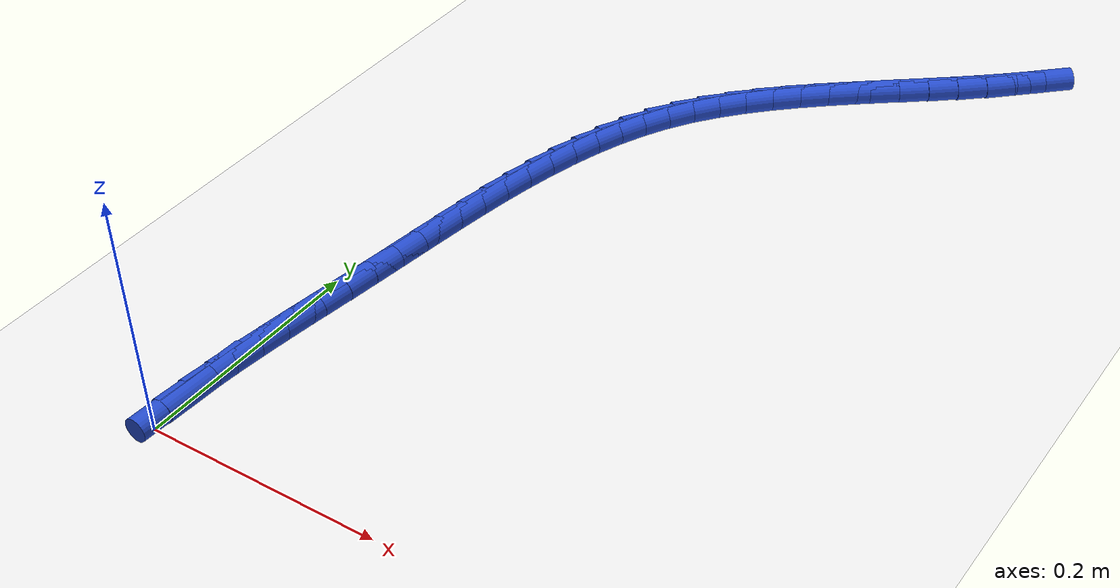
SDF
<sdf version="1.6">
 <world name="default">
  <model name="ground_plane">
   <static>1</static>
   <link name="link">
    <collision name="collision">
     <geometry><plane><normal>0 0 1</normal><size>100 100</size></plane></geometry>
     <surface><friction><ode><mu>100</mu><mu2>50</mu2></ode></friction></surface>
    </collision>
    <visual name="visual">
     <cast_shadows>0</cast_shadows>
     <geometry><plane><normal>0 0 1</normal><size>100 100</size></plane></geometry>
     <material>
      <script><uri>file://media/materials/scripts/gazebo.material</uri><name>Gazebo/WhiteGlow</name></script>
     </material>
    </visual>
   </link>
  </model>
  <model name="line">
   <link name="link_1">
    <pose>0.0007222507805106315 0.024783169948845978 0.01 0 1.57 1.5083730205306412</pose>
    <collision name="collision">
     <geometry><cylinder><radius>0.01</radius><length>0.08</length></cylinder></geometry>
    </collision>
    <visual name="visual">
     <material>
      <script><name>Gazebo/Blue</name><uri>file://media/materials/scripts/gazebo.material</uri></script>
     </material>
     <geometry><cylinder><radius>0.01</radius><length>0.08</length></cylinder></geometry>
    </visual>
   </link>
   <link name="link_2">
    <pose>0.0022718591314617705 0.04957511305696374 0.01 0 1.57 1.4804635396925818</pose>
    <collision name="collision">
     <geometry><cylinder><radius>0.01</radius><length>0.08</length></cylinder></geometry>
    </collision>
    <visual name="visual">
     <material>
      <script><name>Gazebo/Blue</name><uri>file://media/materials/scripts/gazebo.material</uri></script>
     </material>
     <geometry><cylinder><radius>0.01</radius><length>0.08</length></cylinder></geometry>
    </visual>
   </link>
   <link name="link_3">
    <pose>0.004520885112510516 0.07440447305542623 0.01 0 1.57 1.4579832823140808</pose>
    <collision name="collision">
     <geometry><cylinder><radius>0.01</radius><length>0.08</length></cylinder></geometry>
    </collision>
    <visual name="visual">
     <material>
      <script><name>Gazebo/Blue</name><uri>file://media/materials/scripts/gazebo.material</uri></script>
     </material>
     <geometry><cylinder><radius>0.01</radius><length>0.08</length></cylinder></geometry>
    </visual>
   </link>
   <link name="link_4">
    <pose>0.007341388783313968 0.09929989367530627 0.01 0 1.57 1.440918312579927</pose>
    <collision name="collision">
     <geometry><cylinder><radius>0.01</radius><length>0.08</length></cylinder></geometry>
    </collision>
    <visual name="visual">
     <material>
      <script><name>Gazebo/Blue</name><uri>file://media/materials/scripts/gazebo.material</uri></script>
     </material>
     <geometry><cylinder><radius>0.01</radius><length>0.08</length></cylinder></geometry>
    </visual>
   </link>
   <link name="link_5">
    <pose>0.01060543020352924 0.12429001864767683 0.01 0 1.57 1.4292114604930566</pose>
    <collision name="collision">
     <geometry><cylinder><radius>0.01</radius><length>0.08</length></cylinder></geometry>
    </collision>
    <visual name="visual">
     <material>
      <script><name>Gazebo/Blue</name><uri>file://media/materials/scripts/gazebo.material</uri></script>
     </material>
     <geometry><cylinder><radius>0.01</radius><length>0.08</length></cylinder></geometry>
    </visual>
   </link>
   <link name="link_6">
    <pose>0.014185069432813422 0.14940349170361078 0.01 0 1.57 1.4227783164318215</pose>
    <collision name="collision">
     <geometry><cylinder><radius>0.01</radius><length>0.08</length></cylinder></geometry>
    </collision>
    <visual name="visual">
     <material>
      <script><name>Gazebo/Blue</name><uri>file://media/materials/scripts/gazebo.material</uri></script>
     </material>
     <geometry><cylinder><radius>0.01</radius><length>0.08</length></cylinder></geometry>
    </visual>
   </link>
   <link name="link_7">
    <pose>0.017952366530823632 0.17466895657418105 0.01 0 1.57 1.4215182199162297</pose>
    <collision name="collision">
     <geometry><cylinder><radius>0.01</radius><length>0.08</length></cylinder></geometry>
    </collision>
    <visual name="visual">
     <material>
      <script><name>Gazebo/Blue</name><uri>file://media/materials/scripts/gazebo.material</uri></script>
     </material>
     <geometry><cylinder><radius>0.01</radius><length>0.08</length></cylinder></geometry>
    </visual>
   </link>
   <link name="link_8">
    <pose>0.021779381557216967 0.20011505699046056 0.01 0 1.57 1.4253166032420594</pose>
    <collision name="collision">
     <geometry><cylinder><radius>0.01</radius><length>0.08</length></cylinder></geometry>
    </collision>
    <visual name="visual">
     <material>
      <script><name>Gazebo/Blue</name><uri>file://media/materials/scripts/gazebo.material</uri></script>
     </material>
     <geometry><cylinder><radius>0.01</radius><length>0.08</length></cylinder></geometry>
    </visual>
   </link>
   <link name="link_9">
    <pose>0.025538268037186118 0.2257703907212635 0.01 0 1.57 1.4313777457403511</pose>
    <collision name="collision">
     <geometry><cylinder><radius>0.01</radius><length>0.08</length></cylinder></geometry>
    </collision>
    <visual name="visual">
     <material>
      <script><name>Gazebo/Blue</name><uri>file://media/materials/scripts/gazebo.material</uri></script>
     </material>
     <geometry><cylinder><radius>0.01</radius><length>0.08</length></cylinder></geometry>
    </visual>
   </link>
   <link name="link_10">
    <pose>0.02916726873446623 0.2516310557411657 0.01 0 1.57 1.4323362552272612</pose>
    <collision name="collision">
     <geometry><cylinder><radius>0.01</radius><length>0.08</length></cylinder></geometry>
    </collision>
    <visual name="visual">
     <material>
      <script><name>Gazebo/Blue</name><uri>file://media/materials/scripts/gazebo.material</uri></script>
     </material>
     <geometry><cylinder><radius>0.01</radius><length>0.08</length></cylinder></geometry>
    </visual>
   </link>
   <link name="link_11">
    <pose>0.03278659663364936 0.27760366503647804 0.01 0 1.57 1.427010615349144</pose>
    <collision name="collision">
     <geometry><cylinder><radius>0.01</radius><length>0.08</length></cylinder></geometry>
    </collision>
    <visual name="visual">
     <material>
      <script><name>Gazebo/Blue</name><uri>file://media/materials/scripts/gazebo.material</uri></script>
     </material>
     <geometry><cylinder><radius>0.01</radius><length>0.08</length></cylinder></geometry>
    </visual>
   </link>
   <link name="link_12">
    <pose>0.03654751356184786 0.30357956313202666 0.01 0 1.57 1.4153657907886936</pose>
    <collision name="collision">
     <geometry><cylinder><radius>0.01</radius><length>0.08</length></cylinder></geometry>
    </collision>
    <visual name="visual">
     <material>
      <script><name>Gazebo/Blue</name><uri>file://media/materials/scripts/gazebo.material</uri></script>
     </material>
     <geometry><cylinder><radius>0.01</radius><length>0.08</length></cylinder></geometry>
    </visual>
   </link>
   <link name="link_13">
    <pose>0.040601281346174065 0.3294500945526377 0.01 0 1.57 1.3972484574126967</pose>
    <collision name="collision">
     <geometry><cylinder><radius>0.01</radius><length>0.08</length></cylinder></geometry>
    </collision>
    <visual name="visual">
     <material>
      <script><name>Gazebo/Blue</name><uri>file://media/materials/scripts/gazebo.material</uri></script>
     </material>
     <geometry><cylinder><radius>0.01</radius><length>0.08</length></cylinder></geometry>
    </visual>
   </link>
   <link name="link_14">
    <pose>0.04509916181374028 0.35510660382313697 0.01 0 1.57 1.3723956001713247</pose>
    <collision name="collision">
     <geometry><cylinder><radius>0.01</radius><length>0.08</length></cylinder></geometry>
    </collision>
    <visual name="visual">
     <material>
      <script><name>Gazebo/Blue</name><uri>file://media/materials/scripts/gazebo.material</uri></script>
     </material>
     <geometry><cylinder><radius>0.01</radius><length>0.08</length></cylinder></geometry>
    </visual>
   </link>
   <link name="link_15">
    <pose>0.050192416791658895 0.3804404354683509 0.01 0 1.57 1.3404485300727265</pose>
    <collision name="collision">
     <geometry><cylinder><radius>0.01</radius><length>0.08</length></cylinder></geometry>
    </collision>
    <visual name="visual">
     <material>
      <script><name>Gazebo/Blue</name><uri>file://media/materials/scripts/gazebo.material</uri></script>
     </material>
     <geometry><cylinder><radius>0.01</radius><length>0.08</length></cylinder></geometry>
    </visual>
   </link>
   <link name="link_16">
    <pose>0.056032308107042204 0.4053429340131051 0.01 0 1.57 1.3009768018593943</pose>
    <collision name="collision">
     <geometry><cylinder><radius>0.01</radius><length>0.08</length></cylinder></geometry>
    </collision>
    <visual name="visual">
     <material>
      <script><name>Gazebo/Blue</name><uri>file://media/materials/scripts/gazebo.material</uri></script>
     </material>
     <geometry><cylinder><radius>0.01</radius><length>0.08</length></cylinder></geometry>
    </visual>
   </link>
   <link name="link_17">
    <pose>0.06277009758700258 0.4297054439822261 0.01 0 1.57 1.2535183638982366</pose>
    <collision name="collision">
     <geometry><cylinder><radius>0.01</radius><length>0.08</length></cylinder></geometry>
    </collision>
    <visual name="visual">
     <material>
      <script><name>Gazebo/Blue</name><uri>file://media/materials/scripts/gazebo.material</uri></script>
     </material>
     <geometry><cylinder><radius>0.01</radius><length>0.08</length></cylinder></geometry>
    </visual>
   </link>
   <link name="link_18">
    <pose>0.07055704705865233 0.4534193099005396 0.01 0 1.57 1.1976436448500605</pose>
    <collision name="collision">
     <geometry><cylinder><radius>0.01</radius><length>0.08</length></cylinder></geometry>
    </collision>
    <visual name="visual">
     <material>
      <script><name>Gazebo/Blue</name><uri>file://media/materials/scripts/gazebo.material</uri></script>
     </material>
     <geometry><cylinder><radius>0.01</radius><length>0.08</length></cylinder></geometry>
    </visual>
   </link>
   <link name="link_19">
    <pose>0.07954441834910381 0.47637587629287187 0.01 0 1.57 1.133050743131445</pose>
    <collision name="collision">
     <geometry><cylinder><radius>0.01</radius><length>0.08</length></cylinder></geometry>
    </collision>
    <visual name="visual">
     <material>
      <script><name>Gazebo/Blue</name><uri>file://media/materials/scripts/gazebo.material</uri></script>
     </material>
     <geometry><cylinder><radius>0.01</radius><length>0.08</length></cylinder></geometry>
    </visual>
   </link>
   <link name="link_20">
    <pose>0.08988347328546936 0.4984664876840489 0.01 0 1.57 1.0596938997533212</pose>
    <collision name="collision">
     <geometry><cylinder><radius>0.01</radius><length>0.08</length></cylinder></geometry>
    </collision>
    <visual name="visual">
     <material>
      <script><name>Gazebo/Blue</name><uri>file://media/materials/scripts/gazebo.material</uri></script>
     </material>
     <geometry><cylinder><radius>0.01</radius><length>0.08</length></cylinder></geometry>
    </visual>
   </link>
   <link name="link_21">
    <pose>0.10172547369486132 0.5195824885988968 0.01 0 1.57 0.9787237997052846</pose>
    <collision name="collision">
     <geometry><cylinder><radius>0.01</radius><length>0.08</length></cylinder></geometry>
    </collision>
    <visual name="visual">
     <material>
      <script><name>Gazebo/Blue</name><uri>file://media/materials/scripts/gazebo.material</uri></script>
     </material>
     <geometry><cylinder><radius>0.01</radius><length>0.08</length></cylinder></geometry>
    </visual>
   </link>
   <link name="link_22">
    <pose>0.11520621504434371 0.5396263684701199 0.01 0 1.57 0.9009672411544195</pose>
    <collision name="collision">
     <geometry><cylinder><radius>0.01</radius><length>0.08</length></cylinder></geometry>
    </collision>
    <visual name="visual">
     <material>
      <script><name>Gazebo/Blue</name><uri>file://media/materials/scripts/gazebo.material</uri></script>
     </material>
     <geometry><cylinder><radius>0.01</radius><length>0.08</length></cylinder></geometry>
    </visual>
   </link>
   <link name="link_23">
    <pose>0.13026582994640412 0.5586416094709648 0.01 0 1.57 0.8340236462627421</pose>
    <collision name="collision">
     <geometry><cylinder><radius>0.01</radius><length>0.08</length></cylinder></geometry>
    </collision>
    <visual name="visual">
     <material>
      <script><name>Gazebo/Blue</name><uri>file://media/materials/scripts/gazebo.material</uri></script>
     </material>
     <geometry><cylinder><radius>0.01</radius><length>0.08</length></cylinder></geometry>
    </visual>
   </link>
   <link name="link_24">
    <pose>0.1467102501913302 0.5767683975754384 0.01 0 1.57 0.7781974574996203</pose>
    <collision name="collision">
     <geometry><cylinder><radius>0.01</radius><length>0.08</length></cylinder></geometry>
    </collision>
    <visual name="visual">
     <material>
      <script><name>Gazebo/Blue</name><uri>file://media/materials/scripts/gazebo.material</uri></script>
     </material>
     <geometry><cylinder><radius>0.01</radius><length>0.08</length></cylinder></geometry>
    </visual>
   </link>
   <link name="link_25">
    <pose>0.16434278410048048 0.5941488092036153 0.01 0 1.57 0.7332466025543669</pose>
    <collision name="collision">
     <geometry><cylinder><radius>0.01</radius><length>0.08</length></cylinder></geometry>
    </collision>
    <visual name="visual">
     <material>
      <script><name>Gazebo/Blue</name><uri>file://media/materials/scripts/gazebo.material</uri></script>
     </material>
     <geometry><cylinder><radius>0.01</radius><length>0.08</length></cylinder></geometry>
    </visual>
   </link>
   <link name="link_26">
    <pose>0.18296673999521357 0.6109249207755699 0.01 0 1.57 0.6987259892979459</pose>
    <collision name="collision">
     <geometry><cylinder><radius>0.01</radius><length>0.08</length></cylinder></geometry>
    </collision>
    <visual name="visual">
     <material>
      <script><name>Gazebo/Blue</name><uri>file://media/materials/scripts/gazebo.material</uri></script>
     </material>
     <geometry><cylinder><radius>0.01</radius><length>0.08</length></cylinder></geometry>
    </visual>
   </link>
   <link name="link_27">
    <pose>0.2023854261968882 0.6272388087113765 0.01 0 1.57 0.6741424017186908</pose>
    <collision name="collision">
     <geometry><cylinder><radius>0.01</radius><length>0.08</length></cylinder></geometry>
    </collision>
    <visual name="visual">
     <material>
      <script><name>Gazebo/Blue</name><uri>file://media/materials/scripts/gazebo.material</uri></script>
     </material>
     <geometry><cylinder><radius>0.01</radius><length>0.08</length></cylinder></geometry>
    </visual>
   </link>
   <link name="link_28">
    <pose>0.22240215102686312 0.6432325494311097 0.01 0 1.57 0.6590549604459279</pose>
    <collision name="collision">
     <geometry><cylinder><radius>0.01</radius><length>0.08</length></cylinder></geometry>
    </collision>
    <visual name="visual">
     <material>
      <script><name>Gazebo/Blue</name><uri>file://media/materials/scripts/gazebo.material</uri></script>
     </material>
     <geometry><cylinder><radius>0.01</radius><length>0.08</length></cylinder></geometry>
    </visual>
   </link>
   <link name="link_29">
    <pose>0.24282022280649682 0.6590482193548438 0.01 0 1.57 0.6531328040601314</pose>
    <collision name="collision">
     <geometry><cylinder><radius>0.01</radius><length>0.08</length></cylinder></geometry>
    </collision>
    <visual name="visual">
     <material>
      <script><name>Gazebo/Blue</name><uri>file://media/materials/scripts/gazebo.material</uri></script>
     </material>
     <geometry><cylinder><radius>0.01</radius><length>0.08</length></cylinder></geometry>
    </visual>
   </link>
   <link name="link_30">
    <pose>0.26344294985714806 0.6748278949026532 0.01 0 1.57 0.6561825459402939</pose>
    <collision name="collision">
     <geometry><cylinder><radius>0.01</radius><length>0.08</length></cylinder></geometry>
    </collision>
    <visual name="visual">
     <material>
      <script><name>Gazebo/Blue</name><uri>file://media/materials/scripts/gazebo.material</uri></script>
     </material>
     <geometry><cylinder><radius>0.01</radius><length>0.08</length></cylinder></geometry>
    </visual>
   </link>
   <link name="link_31">
    <pose>0.2840736405001753 0.6907136524946123 0.01 0 1.57 0.6681545322979969</pose>
    <collision name="collision">
     <geometry><cylinder><radius>0.01</radius><length>0.08</length></cylinder></geometry>
    </collision>
    <visual name="visual">
     <material>
      <script><name>Gazebo/Blue</name><uri>file://media/materials/scripts/gazebo.material</uri></script>
     </material>
     <geometry><cylinder><radius>0.01</radius><length>0.08</length></cylinder></geometry>
    </visual>
   </link>
   <link name="link_32">
    <pose>0.30451560305693753 0.7068475685507958 0.01 0 1.57 0.6891322635207688</pose>
    <collision name="collision">
     <geometry><cylinder><radius>0.01</radius><length>0.08</length></cylinder></geometry>
    </collision>
    <visual name="visual">
     <material>
      <script><name>Gazebo/Blue</name><uri>file://media/materials/scripts/gazebo.material</uri></script>
     </material>
     <geometry><cylinder><radius>0.01</radius><length>0.08</length></cylinder></geometry>
    </visual>
   </link>
   <link name="link_33">
    <pose>0.3245721458487931 0.7233717194912779 0.01 0 1.57 0.7177177502858603</pose>
    <collision name="collision">
     <geometry><cylinder><radius>0.01</radius><length>0.08</length></cylinder></geometry>
    </collision>
    <visual name="visual">
     <material>
      <script><name>Gazebo/Blue</name><uri>file://media/materials/scripts/gazebo.material</uri></script>
     </material>
     <geometry><cylinder><radius>0.01</radius><length>0.08</length></cylinder></geometry>
    </visual>
   </link>
   <link name="link_34">
    <pose>0.34407607652165456 0.7403993939381728 0.01 0 1.57 0.7418191239127402</pose>
    <collision name="collision">
     <geometry><cylinder><radius>0.01</radius><length>0.08</length></cylinder></geometry>
    </collision>
    <visual name="visual">
     <material>
      <script><name>Gazebo/Blue</name><uri>file://media/materials/scripts/gazebo.material</uri></script>
     </material>
     <geometry><cylinder><radius>0.01</radius><length>0.08</length></cylinder></geometry>
    </visual>
   </link>
   <link name="link_282">
    <pose>0.0025589994818676787 0.049557199190837634 0.01 0 1.57 1.5192048585843232</pose>
    <collision name="collision">
     <geometry><cylinder><radius>0.01</radius><length>0.08</length></cylinder></geometry>
    </collision>
    <visual name="visual">
     <material>
      <script><name>Gazebo/Blue</name><uri>file://media/materials/scripts/gazebo.material</uri></script>
     </material>
     <geometry><cylinder><radius>0.01</radius><length>0.08</length></cylinder></geometry>
    </visual>
   </link>
  </model>
 </world>
</sdf>
